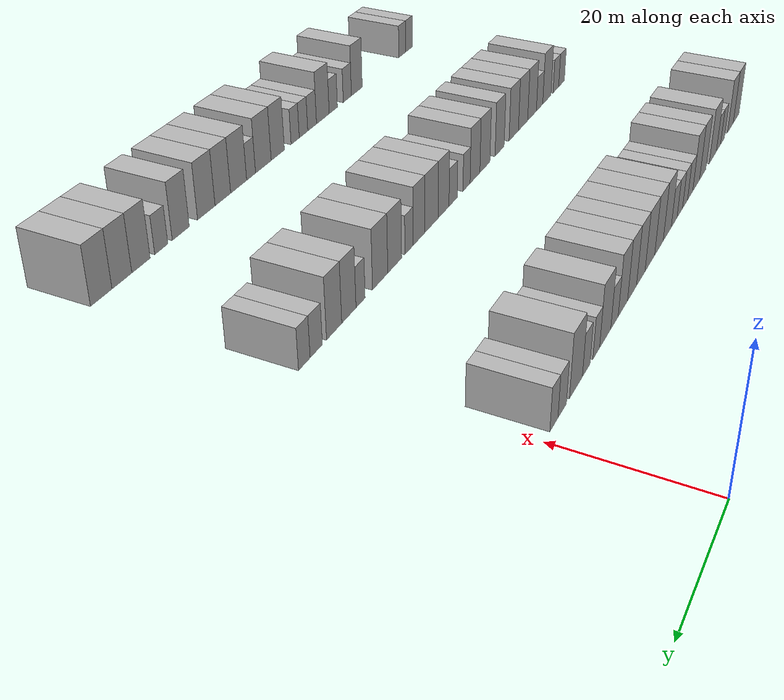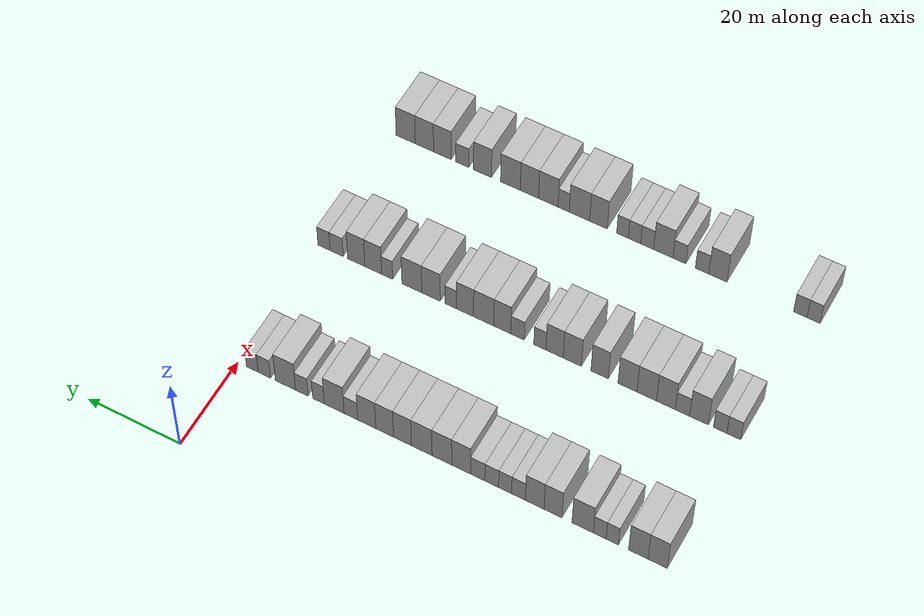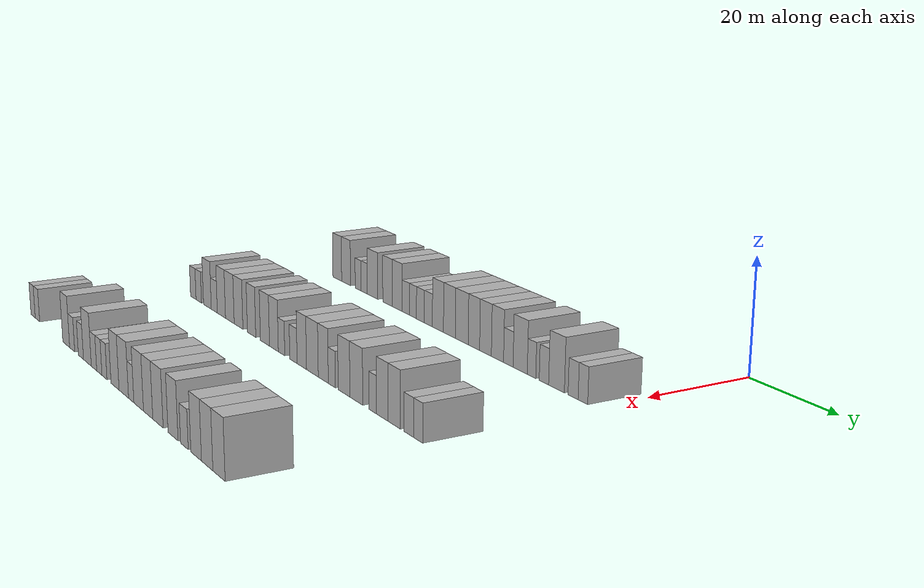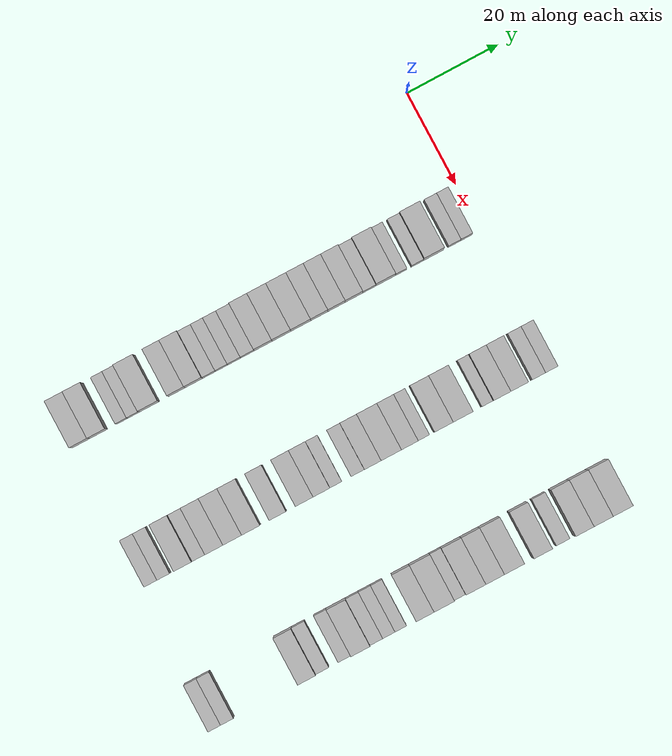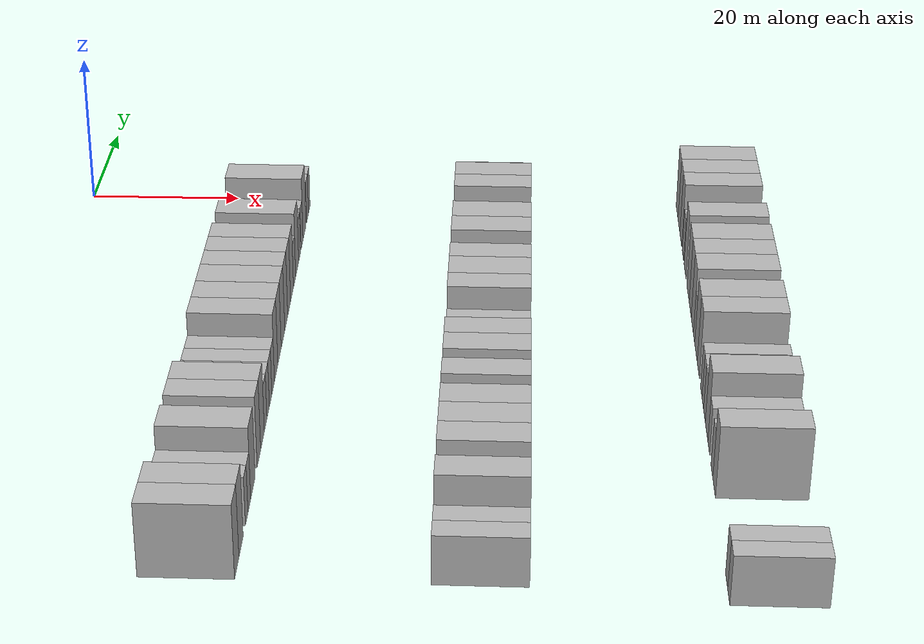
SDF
<sdf version="1.6">
 <world name="default">
  <model name="building_40">
   <static>1</static>
   <pose>25.0000 -86.8956 0 0.000000 0.000000 0.000000</pose>
   <link name="link">
    <pose>0 0 4.50 0 0 0</pose>
    <collision name="collision"><geometry><box><size>10.0000 3.8388 9.0000</size></box></geometry></collision>
    <visual name="visual">
     <cast_shadows>0</cast_shadows>
     <geometry><box><size>10.0000 3.8388 9.0000</size></box></geometry>
     <material>
      <script>
       <uri>model://HANNAS_wall/materials/scripts</uri>
       <uri>model://HANNAS_wall/materials/textures</uri>
       <name>vrc/HANNAS_wall</name>
      </script>
     </material>
    </visual>
   </link>
  </model>
  <model name="building_41">
   <static>1</static>
   <pose>25.0000 -83.0619 0 0.000000 0.000000 0.000000</pose>
   <link name="link">
    <pose>0 0 4.50 0 0 0</pose>
    <collision name="collision"><geometry><box><size>10.0000 3.8285 9.0000</size></box></geometry></collision>
    <visual name="visual">
     <cast_shadows>0</cast_shadows>
     <geometry><box><size>10.0000 3.8285 9.0000</size></box></geometry>
     <material>
      <script>
       <uri>model://HANNAS_wall/materials/scripts</uri>
       <uri>model://HANNAS_wall/materials/textures</uri>
       <name>vrc/HANNAS_wall</name>
      </script>
     </material>
    </visual>
   </link>
  </model>
  <model name="building_42">
   <static>1</static>
   <pose>25.0000 -77.9170 0 0.000000 0.000000 0.000000</pose>
   <link name="link">
    <pose>0 0 3.00 0 0 0</pose>
    <collision name="collision"><geometry><box><size>10.0000 2.4614 6.0000</size></box></geometry></collision>
    <visual name="visual">
     <cast_shadows>0</cast_shadows>
     <geometry><box><size>10.0000 2.4614 6.0000</size></box></geometry>
     <material>
      <script>
       <uri>model://HANNAS_wall/materials/scripts</uri>
       <uri>model://HANNAS_wall/materials/textures</uri>
       <name>vrc/HANNAS_wall</name>
      </script>
     </material>
    </visual>
   </link>
  </model>
  <model name="building_43">
   <static>1</static>
   <pose>25.0000 -75.4098 0 0.000000 0.000000 0.000000</pose>
   <link name="link">
    <pose>0 0 3.00 0 0 0</pose>
    <collision name="collision"><geometry><box><size>10.0000 2.5529 6.0000</size></box></geometry></collision>
    <visual name="visual">
     <cast_shadows>0</cast_shadows>
     <geometry><box><size>10.0000 2.5529 6.0000</size></box></geometry>
     <material>
      <script>
       <uri>model://HANNAS_wall/materials/scripts</uri>
       <uri>model://HANNAS_wall/materials/textures</uri>
       <name>vrc/HANNAS_wall</name>
      </script>
     </material>
    </visual>
   </link>
  </model>
  <model name="building_44">
   <static>1</static>
   <pose>25.0000 -71.9886 0 0.000000 0.000000 0.000000</pose>
   <link name="link">
    <pose>0 0 4.50 0 0 0</pose>
    <collision name="collision"><geometry><box><size>10.0000 4.2896 9.0000</size></box></geometry></collision>
    <visual name="visual">
     <cast_shadows>0</cast_shadows>
     <geometry><box><size>10.0000 4.2896 9.0000</size></box></geometry>
     <material>
      <script>
       <uri>model://HANNAS_wall/materials/scripts</uri>
       <uri>model://HANNAS_wall/materials/textures</uri>
       <name>vrc/HANNAS_wall</name>
      </script>
     </material>
    </visual>
   </link>
  </model>
  <model name="building_45">
   <static>1</static>
   <pose>25.0000 -66.0244 0 0.000000 0.000000 0.000000</pose>
   <link name="link">
    <pose>0 0 4.50 0 0 0</pose>
    <collision name="collision"><geometry><box><size>10.0000 3.6387 9.0000</size></box></geometry></collision>
    <visual name="visual">
     <cast_shadows>0</cast_shadows>
     <geometry><box><size>10.0000 3.6387 9.0000</size></box></geometry>
     <material>
      <script>
       <uri>model://HANNAS_wall/materials/scripts</uri>
       <uri>model://HANNAS_wall/materials/textures</uri>
       <name>vrc/HANNAS_wall</name>
      </script>
     </material>
    </visual>
   </link>
  </model>
  <model name="building_46">
   <static>1</static>
   <pose>25.0000 -62.3112 0 0.000000 0.000000 0.000000</pose>
   <link name="link">
    <pose>0 0 4.50 0 0 0</pose>
    <collision name="collision"><geometry><box><size>10.0000 3.7878 9.0000</size></box></geometry></collision>
    <visual name="visual">
     <cast_shadows>0</cast_shadows>
     <geometry><box><size>10.0000 3.7878 9.0000</size></box></geometry>
     <material>
      <script>
       <uri>model://HANNAS_wall/materials/scripts</uri>
       <uri>model://HANNAS_wall/materials/textures</uri>
       <name>vrc/HANNAS_wall</name>
      </script>
     </material>
    </visual>
   </link>
  </model>
  <model name="building_47">
   <static>1</static>
   <pose>25.0000 -59.0134 0 0.000000 0.000000 0.000000</pose>
   <link name="link">
    <pose>0 0 3.00 0 0 0</pose>
    <collision name="collision"><geometry><box><size>10.0000 2.8077 6.0000</size></box></geometry></collision>
    <visual name="visual">
     <cast_shadows>0</cast_shadows>
     <geometry><box><size>10.0000 2.8077 6.0000</size></box></geometry>
     <material>
      <script>
       <uri>model://HANNAS_wall/materials/scripts</uri>
       <uri>model://HANNAS_wall/materials/textures</uri>
       <name>vrc/HANNAS_wall</name>
      </script>
     </material>
    </visual>
   </link>
  </model>
  <model name="building_48">
   <static>1</static>
   <pose>25.0000 -56.2859 0 0.000000 0.000000 0.000000</pose>
   <link name="link">
    <pose>0 0 3.00 0 0 0</pose>
    <collision name="collision"><geometry><box><size>10.0000 2.6474 6.0000</size></box></geometry></collision>
    <visual name="visual">
     <cast_shadows>0</cast_shadows>
     <geometry><box><size>10.0000 2.6474 6.0000</size></box></geometry>
     <material>
      <script>
       <uri>model://HANNAS_wall/materials/scripts</uri>
       <uri>model://HANNAS_wall/materials/textures</uri>
       <name>vrc/HANNAS_wall</name>
      </script>
     </material>
    </visual>
   </link>
  </model>
  <model name="building_49">
   <static>1</static>
   <pose>25.0000 -53.5529 0 0.000000 0.000000 0.000000</pose>
   <link name="link">
    <pose>0 0 3.00 0 0 0</pose>
    <collision name="collision"><geometry><box><size>10.0000 2.8187 6.0000</size></box></geometry></collision>
    <visual name="visual">
     <cast_shadows>0</cast_shadows>
     <geometry><box><size>10.0000 2.8187 6.0000</size></box></geometry>
     <material>
      <script>
       <uri>model://HANNAS_wall/materials/scripts</uri>
       <uri>model://HANNAS_wall/materials/textures</uri>
       <name>vrc/HANNAS_wall</name>
      </script>
     </material>
    </visual>
   </link>
  </model>
  <model name="building_50">
   <static>1</static>
   <pose>25.0000 -50.6785 0 0.000000 0.000000 0.000000</pose>
   <link name="link">
    <pose>0 0 3.00 0 0 0</pose>
    <collision name="collision"><geometry><box><size>10.0000 2.9302 6.0000</size></box></geometry></collision>
    <visual name="visual">
     <cast_shadows>0</cast_shadows>
     <geometry><box><size>10.0000 2.9302 6.0000</size></box></geometry>
     <material>
      <script>
       <uri>model://HANNAS_wall/materials/scripts</uri>
       <uri>model://HANNAS_wall/materials/textures</uri>
       <name>vrc/HANNAS_wall</name>
      </script>
     </material>
    </visual>
   </link>
  </model>
  <model name="building_51">
   <static>1</static>
   <pose>25.0000 -47.2622 0 0.000000 0.000000 0.000000</pose>
   <link name="link">
    <pose>0 0 4.50 0 0 0</pose>
    <collision name="collision"><geometry><box><size>10.0000 3.9024 9.0000</size></box></geometry></collision>
    <visual name="visual">
     <cast_shadows>0</cast_shadows>
     <geometry><box><size>10.0000 3.9024 9.0000</size></box></geometry>
     <material>
      <script>
       <uri>model://HANNAS_wall/materials/scripts</uri>
       <uri>model://HANNAS_wall/materials/textures</uri>
       <name>vrc/HANNAS_wall</name>
      </script>
     </material>
    </visual>
   </link>
  </model>
  <model name="building_52">
   <static>1</static>
   <pose>25.0000 -43.2851 0 0.000000 0.000000 0.000000</pose>
   <link name="link">
    <pose>0 0 4.50 0 0 0</pose>
    <collision name="collision"><geometry><box><size>10.0000 4.0517 9.0000</size></box></geometry></collision>
    <visual name="visual">
     <cast_shadows>0</cast_shadows>
     <geometry><box><size>10.0000 4.0517 9.0000</size></box></geometry>
     <material>
      <script>
       <uri>model://HANNAS_wall/materials/scripts</uri>
       <uri>model://HANNAS_wall/materials/textures</uri>
       <name>vrc/HANNAS_wall</name>
      </script>
     </material>
    </visual>
   </link>
  </model>
  <model name="building_53">
   <static>1</static>
   <pose>25.0000 -39.0970 0 0.000000 0.000000 0.000000</pose>
   <link name="link">
    <pose>0 0 4.50 0 0 0</pose>
    <collision name="collision"><geometry><box><size>10.0000 4.3244 9.0000</size></box></geometry></collision>
    <visual name="visual">
     <cast_shadows>0</cast_shadows>
     <geometry><box><size>10.0000 4.3244 9.0000</size></box></geometry>
     <material>
      <script>
       <uri>model://HANNAS_wall/materials/scripts</uri>
       <uri>model://HANNAS_wall/materials/textures</uri>
       <name>vrc/HANNAS_wall</name>
      </script>
     </material>
    </visual>
   </link>
  </model>
  <model name="building_54">
   <static>1</static>
   <pose>25.0000 -35.0695 0 0.000000 0.000000 0.000000</pose>
   <link name="link">
    <pose>0 0 4.50 0 0 0</pose>
    <collision name="collision"><geometry><box><size>10.0000 3.7307 9.0000</size></box></geometry></collision>
    <visual name="visual">
     <cast_shadows>0</cast_shadows>
     <geometry><box><size>10.0000 3.7307 9.0000</size></box></geometry>
     <material>
      <script>
       <uri>model://HANNAS_wall/materials/scripts</uri>
       <uri>model://HANNAS_wall/materials/textures</uri>
       <name>vrc/HANNAS_wall</name>
      </script>
     </material>
    </visual>
   </link>
  </model>
  <model name="building_55">
   <static>1</static>
   <pose>25.0000 -31.3385 0 0.000000 0.000000 0.000000</pose>
   <link name="link">
    <pose>0 0 4.50 0 0 0</pose>
    <collision name="collision"><geometry><box><size>10.0000 3.7313 9.0000</size></box></geometry></collision>
    <visual name="visual">
     <cast_shadows>0</cast_shadows>
     <geometry><box><size>10.0000 3.7313 9.0000</size></box></geometry>
     <material>
      <script>
       <uri>model://HANNAS_wall/materials/scripts</uri>
       <uri>model://HANNAS_wall/materials/textures</uri>
       <name>vrc/HANNAS_wall</name>
      </script>
     </material>
    </visual>
   </link>
  </model>
  <model name="building_56">
   <static>1</static>
   <pose>25.0000 -27.5776 0 0.000000 0.000000 0.000000</pose>
   <link name="link">
    <pose>0 0 4.50 0 0 0</pose>
    <collision name="collision"><geometry><box><size>10.0000 3.7907 9.0000</size></box></geometry></collision>
    <visual name="visual">
     <cast_shadows>0</cast_shadows>
     <geometry><box><size>10.0000 3.7907 9.0000</size></box></geometry>
     <material>
      <script>
       <uri>model://HANNAS_wall/materials/scripts</uri>
       <uri>model://HANNAS_wall/materials/textures</uri>
       <name>vrc/HANNAS_wall</name>
      </script>
     </material>
    </visual>
   </link>
  </model>
  <model name="building_57">
   <static>1</static>
   <pose>25.0000 -24.2342 0 0.000000 0.000000 0.000000</pose>
   <link name="link">
    <pose>0 0 3.00 0 0 0</pose>
    <collision name="collision"><geometry><box><size>10.0000 2.8959 6.0000</size></box></geometry></collision>
    <visual name="visual">
     <cast_shadows>0</cast_shadows>
     <geometry><box><size>10.0000 2.8959 6.0000</size></box></geometry>
     <material>
      <script>
       <uri>model://HANNAS_wall/materials/scripts</uri>
       <uri>model://HANNAS_wall/materials/textures</uri>
       <name>vrc/HANNAS_wall</name>
      </script>
     </material>
    </visual>
   </link>
  </model>
  <model name="building_58">
   <static>1</static>
   <pose>25.0000 -20.6835 0 0.000000 0.000000 0.000000</pose>
   <link name="link">
    <pose>0 0 4.50 0 0 0</pose>
    <collision name="collision"><geometry><box><size>10.0000 4.2056 9.0000</size></box></geometry></collision>
    <visual name="visual">
     <cast_shadows>0</cast_shadows>
     <geometry><box><size>10.0000 4.2056 9.0000</size></box></geometry>
     <material>
      <script>
       <uri>model://HANNAS_wall/materials/scripts</uri>
       <uri>model://HANNAS_wall/materials/textures</uri>
       <name>vrc/HANNAS_wall</name>
      </script>
     </material>
    </visual>
   </link>
  </model>
  <model name="building_59">
   <static>1</static>
   <pose>25.0000 -17.3488 0 0.000000 0.000000 0.000000</pose>
   <link name="link">
    <pose>0 0 3.00 0 0 0</pose>
    <collision name="collision"><geometry><box><size>10.0000 2.4637 6.0000</size></box></geometry></collision>
    <visual name="visual">
     <cast_shadows>0</cast_shadows>
     <geometry><box><size>10.0000 2.4637 6.0000</size></box></geometry>
     <material>
      <script>
       <uri>model://HANNAS_wall/materials/scripts</uri>
       <uri>model://HANNAS_wall/materials/textures</uri>
       <name>vrc/HANNAS_wall</name>
      </script>
     </material>
    </visual>
   </link>
  </model>
  <model name="building_60">
   <static>1</static>
   <pose>25.0000 -13.7877 0 0.000000 0.000000 0.000000</pose>
   <link name="link">
    <pose>0 0 3.00 0 0 0</pose>
    <collision name="collision"><geometry><box><size>10.0000 2.6586 6.0000</size></box></geometry></collision>
    <visual name="visual">
     <cast_shadows>0</cast_shadows>
     <geometry><box><size>10.0000 2.6586 6.0000</size></box></geometry>
     <material>
      <script>
       <uri>model://HANNAS_wall/materials/scripts</uri>
       <uri>model://HANNAS_wall/materials/textures</uri>
       <name>vrc/HANNAS_wall</name>
      </script>
     </material>
    </visual>
   </link>
  </model>
  <model name="building_61">
   <static>1</static>
   <pose>25.0000 -10.2768 0 0.000000 0.000000 0.000000</pose>
   <link name="link">
    <pose>0 0 4.50 0 0 0</pose>
    <collision name="collision"><geometry><box><size>10.0000 4.3634 9.0000</size></box></geometry></collision>
    <visual name="visual">
     <cast_shadows>0</cast_shadows>
     <geometry><box><size>10.0000 4.3634 9.0000</size></box></geometry>
     <material>
      <script>
       <uri>model://HANNAS_wall/materials/scripts</uri>
       <uri>model://HANNAS_wall/materials/textures</uri>
       <name>vrc/HANNAS_wall</name>
      </script>
     </material>
    </visual>
   </link>
  </model>
  <model name="building_62">
   <static>1</static>
   <pose>25.0000 -5.7446 0 0.000000 0.000000 0.000000</pose>
   <link name="link">
    <pose>0 0 3.00 0 0 0</pose>
    <collision name="collision"><geometry><box><size>10.0000 2.7009 6.0000</size></box></geometry></collision>
    <visual name="visual">
     <cast_shadows>0</cast_shadows>
     <geometry><box><size>10.0000 2.7009 6.0000</size></box></geometry>
     <material>
      <script>
       <uri>model://HANNAS_wall/materials/scripts</uri>
       <uri>model://HANNAS_wall/materials/textures</uri>
       <name>vrc/HANNAS_wall</name>
      </script>
     </material>
    </visual>
   </link>
  </model>
  <model name="building_63">
   <static>1</static>
   <pose>25.0000 -3.1320 0 0.000000 0.000000 0.000000</pose>
   <link name="link">
    <pose>0 0 3.00 0 0 0</pose>
    <collision name="collision"><geometry><box><size>10.0000 2.5242 6.0000</size></box></geometry></collision>
    <visual name="visual">
     <cast_shadows>0</cast_shadows>
     <geometry><box><size>10.0000 2.5242 6.0000</size></box></geometry>
     <material>
      <script>
       <uri>model://HANNAS_wall/materials/scripts</uri>
       <uri>model://HANNAS_wall/materials/textures</uri>
       <name>vrc/HANNAS_wall</name>
      </script>
     </material>
    </visual>
   </link>
  </model>
  <model name="building_185">
   <static>1</static>
   <pose>55.0000 -87.4559 0 0.000000 0.000000 0.000000</pose>
   <link name="link">
    <pose>0 0 3.00 0 0 0</pose>
    <collision name="collision"><geometry><box><size>10.0000 2.8057 6.0000</size></box></geometry></collision>
    <visual name="visual">
     <cast_shadows>0</cast_shadows>
     <geometry><box><size>10.0000 2.8057 6.0000</size></box></geometry>
     <material>
      <script>
       <uri>model://HANNAS_wall/materials/scripts</uri>
       <uri>model://HANNAS_wall/materials/textures</uri>
       <name>vrc/HANNAS_wall</name>
      </script>
     </material>
    </visual>
   </link>
  </model>
  <model name="building_186">
   <static>1</static>
   <pose>55.0000 -84.6841 0 0.000000 0.000000 0.000000</pose>
   <link name="link">
    <pose>0 0 3.00 0 0 0</pose>
    <collision name="collision"><geometry><box><size>10.0000 2.7378 6.0000</size></box></geometry></collision>
    <visual name="visual">
     <cast_shadows>0</cast_shadows>
     <geometry><box><size>10.0000 2.7378 6.0000</size></box></geometry>
     <material>
      <script>
       <uri>model://HANNAS_wall/materials/scripts</uri>
       <uri>model://HANNAS_wall/materials/textures</uri>
       <name>vrc/HANNAS_wall</name>
      </script>
     </material>
    </visual>
   </link>
  </model>
  <model name="building_187">
   <static>1</static>
   <pose>55.0000 -80.4016 0 0.000000 0.000000 0.000000</pose>
   <link name="link">
    <pose>0 0 4.50 0 0 0</pose>
    <collision name="collision"><geometry><box><size>10.0000 3.8273 9.0000</size></box></geometry></collision>
    <visual name="visual">
     <cast_shadows>0</cast_shadows>
     <geometry><box><size>10.0000 3.8273 9.0000</size></box></geometry>
     <material>
      <script>
       <uri>model://HANNAS_wall/materials/scripts</uri>
       <uri>model://HANNAS_wall/materials/textures</uri>
       <name>vrc/HANNAS_wall</name>
      </script>
     </material>
    </visual>
   </link>
  </model>
  <model name="building_188">
   <static>1</static>
   <pose>55.0000 -77.0390 0 0.000000 0.000000 0.000000</pose>
   <link name="link">
    <pose>0 0 3.00 0 0 0</pose>
    <collision name="collision"><geometry><box><size>10.0000 2.8979 6.0000</size></box></geometry></collision>
    <visual name="visual">
     <cast_shadows>0</cast_shadows>
     <geometry><box><size>10.0000 2.8979 6.0000</size></box></geometry>
     <material>
      <script>
       <uri>model://HANNAS_wall/materials/scripts</uri>
       <uri>model://HANNAS_wall/materials/textures</uri>
       <name>vrc/HANNAS_wall</name>
      </script>
     </material>
    </visual>
   </link>
  </model>
  <model name="building_189">
   <static>1</static>
   <pose>55.0000 -73.6540 0 0.000000 0.000000 0.000000</pose>
   <link name="link">
    <pose>0 0 4.50 0 0 0</pose>
    <collision name="collision"><geometry><box><size>10.0000 3.8720 9.0000</size></box></geometry></collision>
    <visual name="visual">
     <cast_shadows>0</cast_shadows>
     <geometry><box><size>10.0000 3.8720 9.0000</size></box></geometry>
     <material>
      <script>
       <uri>model://HANNAS_wall/materials/scripts</uri>
       <uri>model://HANNAS_wall/materials/textures</uri>
       <name>vrc/HANNAS_wall</name>
      </script>
     </material>
    </visual>
   </link>
  </model>
  <model name="building_190">
   <static>1</static>
   <pose>55.0000 -69.7147 0 0.000000 0.000000 0.000000</pose>
   <link name="link">
    <pose>0 0 4.50 0 0 0</pose>
    <collision name="collision"><geometry><box><size>10.0000 4.0067 9.0000</size></box></geometry></collision>
    <visual name="visual">
     <cast_shadows>0</cast_shadows>
     <geometry><box><size>10.0000 4.0067 9.0000</size></box></geometry>
     <material>
      <script>
       <uri>model://HANNAS_wall/materials/scripts</uri>
       <uri>model://HANNAS_wall/materials/textures</uri>
       <name>vrc/HANNAS_wall</name>
      </script>
     </material>
    </visual>
   </link>
  </model>
  <model name="building_191">
   <static>1</static>
   <pose>55.0000 -65.7523 0 0.000000 0.000000 0.000000</pose>
   <link name="link">
    <pose>0 0 4.50 0 0 0</pose>
    <collision name="collision"><geometry><box><size>10.0000 3.9180 9.0000</size></box></geometry></collision>
    <visual name="visual">
     <cast_shadows>0</cast_shadows>
     <geometry><box><size>10.0000 3.9180 9.0000</size></box></geometry>
     <material>
      <script>
       <uri>model://HANNAS_wall/materials/scripts</uri>
       <uri>model://HANNAS_wall/materials/textures</uri>
       <name>vrc/HANNAS_wall</name>
      </script>
     </material>
    </visual>
   </link>
  </model>
  <model name="building_192">
   <static>1</static>
   <pose>55.0000 -59.9855 0 0.000000 0.000000 0.000000</pose>
   <link name="link">
    <pose>0 0 4.50 0 0 0</pose>
    <collision name="collision"><geometry><box><size>10.0000 3.6156 9.0000</size></box></geometry></collision>
    <visual name="visual">
     <cast_shadows>0</cast_shadows>
     <geometry><box><size>10.0000 3.6156 9.0000</size></box></geometry>
     <material>
      <script>
       <uri>model://HANNAS_wall/materials/scripts</uri>
       <uri>model://HANNAS_wall/materials/textures</uri>
       <name>vrc/HANNAS_wall</name>
      </script>
     </material>
    </visual>
   </link>
  </model>
  <model name="building_193">
   <static>1</static>
   <pose>55.0000 -54.2733 0 0.000000 0.000000 0.000000</pose>
   <link name="link">
    <pose>0 0 4.50 0 0 0</pose>
    <collision name="collision"><geometry><box><size>10.0000 3.8086 9.0000</size></box></geometry></collision>
    <visual name="visual">
     <cast_shadows>0</cast_shadows>
     <geometry><box><size>10.0000 3.8086 9.0000</size></box></geometry>
     <material>
      <script>
       <uri>model://HANNAS_wall/materials/scripts</uri>
       <uri>model://HANNAS_wall/materials/textures</uri>
       <name>vrc/HANNAS_wall</name>
      </script>
     </material>
    </visual>
   </link>
  </model>
  <model name="building_194">
   <static>1</static>
   <pose>55.0000 -50.5607 0 0.000000 0.000000 0.000000</pose>
   <link name="link">
    <pose>0 0 4.50 0 0 0</pose>
    <collision name="collision"><geometry><box><size>10.0000 3.6167 9.0000</size></box></geometry></collision>
    <visual name="visual">
     <cast_shadows>0</cast_shadows>
     <geometry><box><size>10.0000 3.6167 9.0000</size></box></geometry>
     <material>
      <script>
       <uri>model://HANNAS_wall/materials/scripts</uri>
       <uri>model://HANNAS_wall/materials/textures</uri>
       <name>vrc/HANNAS_wall</name>
      </script>
     </material>
    </visual>
   </link>
  </model>
  <model name="building_195">
   <static>1</static>
   <pose>55.0000 -47.4698 0 0.000000 0.000000 0.000000</pose>
   <link name="link">
    <pose>0 0 3.00 0 0 0</pose>
    <collision name="collision"><geometry><box><size>10.0000 2.5650 6.0000</size></box></geometry></collision>
    <visual name="visual">
     <cast_shadows>0</cast_shadows>
     <geometry><box><size>10.0000 2.5650 6.0000</size></box></geometry>
     <material>
      <script>
       <uri>model://HANNAS_wall/materials/scripts</uri>
       <uri>model://HANNAS_wall/materials/textures</uri>
       <name>vrc/HANNAS_wall</name>
      </script>
     </material>
    </visual>
   </link>
  </model>
  <model name="building_196">
   <static>1</static>
   <pose>55.0000 -42.7627 0 0.000000 0.000000 0.000000</pose>
   <link name="link">
    <pose>0 0 3.00 0 0 0</pose>
    <collision name="collision"><geometry><box><size>10.0000 2.8492 6.0000</size></box></geometry></collision>
    <visual name="visual">
     <cast_shadows>0</cast_shadows>
     <geometry><box><size>10.0000 2.8492 6.0000</size></box></geometry>
     <material>
      <script>
       <uri>model://HANNAS_wall/materials/scripts</uri>
       <uri>model://HANNAS_wall/materials/textures</uri>
       <name>vrc/HANNAS_wall</name>
      </script>
     </material>
    </visual>
   </link>
  </model>
  <model name="building_197">
   <static>1</static>
   <pose>55.0000 -39.5380 0 0.000000 0.000000 0.000000</pose>
   <link name="link">
    <pose>0 0 4.50 0 0 0</pose>
    <collision name="collision"><geometry><box><size>10.0000 3.6003 9.0000</size></box></geometry></collision>
    <visual name="visual">
     <cast_shadows>0</cast_shadows>
     <geometry><box><size>10.0000 3.6003 9.0000</size></box></geometry>
     <material>
      <script>
       <uri>model://HANNAS_wall/materials/scripts</uri>
       <uri>model://HANNAS_wall/materials/textures</uri>
       <name>vrc/HANNAS_wall</name>
      </script>
     </material>
    </visual>
   </link>
  </model>
  <model name="building_198">
   <static>1</static>
   <pose>55.0000 -35.5550 0 0.000000 0.000000 0.000000</pose>
   <link name="link">
    <pose>0 0 4.50 0 0 0</pose>
    <collision name="collision"><geometry><box><size>10.0000 4.3657 9.0000</size></box></geometry></collision>
    <visual name="visual">
     <cast_shadows>0</cast_shadows>
     <geometry><box><size>10.0000 4.3657 9.0000</size></box></geometry>
     <material>
      <script>
       <uri>model://HANNAS_wall/materials/scripts</uri>
       <uri>model://HANNAS_wall/materials/textures</uri>
       <name>vrc/HANNAS_wall</name>
      </script>
     </material>
    </visual>
   </link>
  </model>
  <model name="building_199">
   <static>1</static>
   <pose>55.0000 -31.5668 0 0.000000 0.000000 0.000000</pose>
   <link name="link">
    <pose>0 0 4.50 0 0 0</pose>
    <collision name="collision"><geometry><box><size>10.0000 3.6107 9.0000</size></box></geometry></collision>
    <visual name="visual">
     <cast_shadows>0</cast_shadows>
     <geometry><box><size>10.0000 3.6107 9.0000</size></box></geometry>
     <material>
      <script>
       <uri>model://HANNAS_wall/materials/scripts</uri>
       <uri>model://HANNAS_wall/materials/textures</uri>
       <name>vrc/HANNAS_wall</name>
      </script>
     </material>
    </visual>
   </link>
  </model>
  <model name="building_200">
   <static>1</static>
   <pose>55.0000 -28.5102 0 0.000000 0.000000 0.000000</pose>
   <link name="link">
    <pose>0 0 3.00 0 0 0</pose>
    <collision name="collision"><geometry><box><size>10.0000 2.5026 6.0000</size></box></geometry></collision>
    <visual name="visual">
     <cast_shadows>0</cast_shadows>
     <geometry><box><size>10.0000 2.5026 6.0000</size></box></geometry>
     <material>
      <script>
       <uri>model://HANNAS_wall/materials/scripts</uri>
       <uri>model://HANNAS_wall/materials/textures</uri>
       <name>vrc/HANNAS_wall</name>
      </script>
     </material>
    </visual>
   </link>
  </model>
  <model name="building_201">
   <static>1</static>
   <pose>55.0000 -24.2482 0 0.000000 0.000000 0.000000</pose>
   <link name="link">
    <pose>0 0 4.50 0 0 0</pose>
    <collision name="collision"><geometry><box><size>10.0000 4.0212 9.0000</size></box></geometry></collision>
    <visual name="visual">
     <cast_shadows>0</cast_shadows>
     <geometry><box><size>10.0000 4.0212 9.0000</size></box></geometry>
     <material>
      <script>
       <uri>model://HANNAS_wall/materials/scripts</uri>
       <uri>model://HANNAS_wall/materials/textures</uri>
       <name>vrc/HANNAS_wall</name>
      </script>
     </material>
    </visual>
   </link>
  </model>
  <model name="building_202">
   <static>1</static>
   <pose>55.0000 -20.0961 0 0.000000 0.000000 0.000000</pose>
   <link name="link">
    <pose>0 0 4.50 0 0 0</pose>
    <collision name="collision"><geometry><box><size>10.0000 4.2831 9.0000</size></box></geometry></collision>
    <visual name="visual">
     <cast_shadows>0</cast_shadows>
     <geometry><box><size>10.0000 4.2831 9.0000</size></box></geometry>
     <material>
      <script>
       <uri>model://HANNAS_wall/materials/scripts</uri>
       <uri>model://HANNAS_wall/materials/textures</uri>
       <name>vrc/HANNAS_wall</name>
      </script>
     </material>
    </visual>
   </link>
  </model>
  <model name="building_203">
   <static>1</static>
   <pose>55.0000 -14.7460 0 0.000000 0.000000 0.000000</pose>
   <link name="link">
    <pose>0 0 3.00 0 0 0</pose>
    <collision name="collision"><geometry><box><size>10.0000 2.4171 6.0000</size></box></geometry></collision>
    <visual name="visual">
     <cast_shadows>0</cast_shadows>
     <geometry><box><size>10.0000 2.4171 6.0000</size></box></geometry>
     <material>
      <script>
       <uri>model://HANNAS_wall/materials/scripts</uri>
       <uri>model://HANNAS_wall/materials/textures</uri>
       <name>vrc/HANNAS_wall</name>
      </script>
     </material>
    </visual>
   </link>
  </model>
  <model name="building_204">
   <static>1</static>
   <pose>55.0000 -11.7007 0 0.000000 0.000000 0.000000</pose>
   <link name="link">
    <pose>0 0 4.50 0 0 0</pose>
    <collision name="collision"><geometry><box><size>10.0000 3.6735 9.0000</size></box></geometry></collision>
    <visual name="visual">
     <cast_shadows>0</cast_shadows>
     <geometry><box><size>10.0000 3.6735 9.0000</size></box></geometry>
     <material>
      <script>
       <uri>model://HANNAS_wall/materials/scripts</uri>
       <uri>model://HANNAS_wall/materials/textures</uri>
       <name>vrc/HANNAS_wall</name>
      </script>
     </material>
    </visual>
   </link>
  </model>
  <model name="building_205">
   <static>1</static>
   <pose>55.0000 -7.9735 0 0.000000 0.000000 0.000000</pose>
   <link name="link">
    <pose>0 0 4.50 0 0 0</pose>
    <collision name="collision"><geometry><box><size>10.0000 3.7809 9.0000</size></box></geometry></collision>
    <visual name="visual">
     <cast_shadows>0</cast_shadows>
     <geometry><box><size>10.0000 3.7809 9.0000</size></box></geometry>
     <material>
      <script>
       <uri>model://HANNAS_wall/materials/scripts</uri>
       <uri>model://HANNAS_wall/materials/textures</uri>
       <name>vrc/HANNAS_wall</name>
      </script>
     </material>
    </visual>
   </link>
  </model>
  <model name="building_206">
   <static>1</static>
   <pose>55.0000 -3.6330 0 0.000000 0.000000 0.000000</pose>
   <link name="link">
    <pose>0 0 3.00 0 0 0</pose>
    <collision name="collision"><geometry><box><size>10.0000 2.9001 6.0000</size></box></geometry></collision>
    <visual name="visual">
     <cast_shadows>0</cast_shadows>
     <geometry><box><size>10.0000 2.9001 6.0000</size></box></geometry>
     <material>
      <script>
       <uri>model://HANNAS_wall/materials/scripts</uri>
       <uri>model://HANNAS_wall/materials/textures</uri>
       <name>vrc/HANNAS_wall</name>
      </script>
     </material>
    </visual>
   </link>
  </model>
  <model name="building_207">
   <static>1</static>
   <pose>55.0000 -0.8436 0 0.000000 0.000000 0.000000</pose>
   <link name="link">
    <pose>0 0 3.00 0 0 0</pose>
    <collision name="collision"><geometry><box><size>10.0000 2.6787 6.0000</size></box></geometry></collision>
    <visual name="visual">
     <cast_shadows>0</cast_shadows>
     <geometry><box><size>10.0000 2.6787 6.0000</size></box></geometry>
     <material>
      <script>
       <uri>model://HANNAS_wall/materials/scripts</uri>
       <uri>model://HANNAS_wall/materials/textures</uri>
       <name>vrc/HANNAS_wall</name>
      </script>
     </material>
    </visual>
   </link>
  </model>
  <model name="building_315">
   <static>1</static>
   <pose>85.0000 -89.6705 0 0.000000 0.000000 0.000000</pose>
   <link name="link">
    <pose>0 0 3.00 0 0 0</pose>
    <collision name="collision"><geometry><box><size>10.0000 2.7214 6.0000</size></box></geometry></collision>
    <visual name="visual">
     <cast_shadows>0</cast_shadows>
     <geometry><box><size>10.0000 2.7214 6.0000</size></box></geometry>
     <material>
      <script>
       <uri>model://HANNAS_wall/materials/scripts</uri>
       <uri>model://HANNAS_wall/materials/textures</uri>
       <name>vrc/HANNAS_wall</name>
      </script>
     </material>
    </visual>
   </link>
  </model>
  <model name="building_316">
   <static>1</static>
   <pose>85.0000 -86.9247 0 0.000000 0.000000 0.000000</pose>
   <link name="link">
    <pose>0 0 3.00 0 0 0</pose>
    <collision name="collision"><geometry><box><size>10.0000 2.7703 6.0000</size></box></geometry></collision>
    <visual name="visual">
     <cast_shadows>0</cast_shadows>
     <geometry><box><size>10.0000 2.7703 6.0000</size></box></geometry>
     <material>
      <script>
       <uri>model://HANNAS_wall/materials/scripts</uri>
       <uri>model://HANNAS_wall/materials/textures</uri>
       <name>vrc/HANNAS_wall</name>
      </script>
     </material>
    </visual>
   </link>
  </model>
  <model name="building_317">
   <static>1</static>
   <pose>85.0000 -69.7592 0 0.000000 0.000000 0.000000</pose>
   <link name="link">
    <pose>0 0 4.50 0 0 0</pose>
    <collision name="collision"><geometry><box><size>10.0000 3.8536 9.0000</size></box></geometry></collision>
    <visual name="visual">
     <cast_shadows>0</cast_shadows>
     <geometry><box><size>10.0000 3.8536 9.0000</size></box></geometry>
     <material>
      <script>
       <uri>model://HANNAS_wall/materials/scripts</uri>
       <uri>model://HANNAS_wall/materials/textures</uri>
       <name>vrc/HANNAS_wall</name>
      </script>
     </material>
    </visual>
   </link>
  </model>
  <model name="building_318">
   <static>1</static>
   <pose>85.0000 -66.4227 0 0.000000 0.000000 0.000000</pose>
   <link name="link">
    <pose>0 0 3.00 0 0 0</pose>
    <collision name="collision"><geometry><box><size>10.0000 2.8194 6.0000</size></box></geometry></collision>
    <visual name="visual">
     <cast_shadows>0</cast_shadows>
     <geometry><box><size>10.0000 2.8194 6.0000</size></box></geometry>
     <material>
      <script>
       <uri>model://HANNAS_wall/materials/scripts</uri>
       <uri>model://HANNAS_wall/materials/textures</uri>
       <name>vrc/HANNAS_wall</name>
      </script>
     </material>
    </visual>
   </link>
  </model>
  <model name="building_319">
   <static>1</static>
   <pose>85.0000 -61.6410 0 0.000000 0.000000 0.000000</pose>
   <link name="link">
    <pose>0 0 3.00 0 0 0</pose>
    <collision name="collision"><geometry><box><size>10.0000 2.7441 6.0000</size></box></geometry></collision>
    <visual name="visual">
     <cast_shadows>0</cast_shadows>
     <geometry><box><size>10.0000 2.7441 6.0000</size></box></geometry>
     <material>
      <script>
       <uri>model://HANNAS_wall/materials/scripts</uri>
       <uri>model://HANNAS_wall/materials/textures</uri>
       <name>vrc/HANNAS_wall</name>
      </script>
     </material>
    </visual>
   </link>
  </model>
  <model name="building_320">
   <static>1</static>
   <pose>85.0000 -58.2048 0 0.000000 0.000000 0.000000</pose>
   <link name="link">
    <pose>0 0 4.50 0 0 0</pose>
    <collision name="collision"><geometry><box><size>10.0000 4.1284 9.0000</size></box></geometry></collision>
    <visual name="visual">
     <cast_shadows>0</cast_shadows>
     <geometry><box><size>10.0000 4.1284 9.0000</size></box></geometry>
     <material>
      <script>
       <uri>model://HANNAS_wall/materials/scripts</uri>
       <uri>model://HANNAS_wall/materials/textures</uri>
       <name>vrc/HANNAS_wall</name>
      </script>
     </material>
    </visual>
   </link>
  </model>
  <model name="building_321">
   <static>1</static>
   <pose>85.0000 -54.7530 0 0.000000 0.000000 0.000000</pose>
   <link name="link">
    <pose>0 0 3.00 0 0 0</pose>
    <collision name="collision"><geometry><box><size>10.0000 2.7752 6.0000</size></box></geometry></collision>
    <visual name="visual">
     <cast_shadows>0</cast_shadows>
     <geometry><box><size>10.0000 2.7752 6.0000</size></box></geometry>
     <material>
      <script>
       <uri>model://HANNAS_wall/materials/scripts</uri>
       <uri>model://HANNAS_wall/materials/textures</uri>
       <name>vrc/HANNAS_wall</name>
      </script>
     </material>
    </visual>
   </link>
  </model>
  <model name="building_322">
   <static>1</static>
   <pose>85.0000 -52.0486 0 0.000000 0.000000 0.000000</pose>
   <link name="link">
    <pose>0 0 3.00 0 0 0</pose>
    <collision name="collision"><geometry><box><size>10.0000 2.6335 6.0000</size></box></geometry></collision>
    <visual name="visual">
     <cast_shadows>0</cast_shadows>
     <geometry><box><size>10.0000 2.6335 6.0000</size></box></geometry>
     <material>
      <script>
       <uri>model://HANNAS_wall/materials/scripts</uri>
       <uri>model://HANNAS_wall/materials/textures</uri>
       <name>vrc/HANNAS_wall</name>
      </script>
     </material>
    </visual>
   </link>
  </model>
  <model name="building_323">
   <static>1</static>
   <pose>85.0000 -49.4848 0 0.000000 0.000000 0.000000</pose>
   <link name="link">
    <pose>0 0 3.00 0 0 0</pose>
    <collision name="collision"><geometry><box><size>10.0000 2.4942 6.0000</size></box></geometry></collision>
    <visual name="visual">
     <cast_shadows>0</cast_shadows>
     <geometry><box><size>10.0000 2.4942 6.0000</size></box></geometry>
     <material>
      <script>
       <uri>model://HANNAS_wall/materials/scripts</uri>
       <uri>model://HANNAS_wall/materials/textures</uri>
       <name>vrc/HANNAS_wall</name>
      </script>
     </material>
    </visual>
   </link>
  </model>
  <model name="building_324">
   <static>1</static>
   <pose>85.0000 -44.3191 0 0.000000 0.000000 0.000000</pose>
   <link name="link">
    <pose>0 0 4.50 0 0 0</pose>
    <collision name="collision"><geometry><box><size>10.0000 3.8371 9.0000</size></box></geometry></collision>
    <visual name="visual">
     <cast_shadows>0</cast_shadows>
     <geometry><box><size>10.0000 3.8371 9.0000</size></box></geometry>
     <material>
      <script>
       <uri>model://HANNAS_wall/materials/scripts</uri>
       <uri>model://HANNAS_wall/materials/textures</uri>
       <name>vrc/HANNAS_wall</name>
      </script>
     </material>
    </visual>
   </link>
  </model>
  <model name="building_325">
   <static>1</static>
   <pose>85.0000 -40.1906 0 0.000000 0.000000 0.000000</pose>
   <link name="link">
    <pose>0 0 4.50 0 0 0</pose>
    <collision name="collision"><geometry><box><size>10.0000 4.4200 9.0000</size></box></geometry></collision>
    <visual name="visual">
     <cast_shadows>0</cast_shadows>
     <geometry><box><size>10.0000 4.4200 9.0000</size></box></geometry>
     <material>
      <script>
       <uri>model://HANNAS_wall/materials/scripts</uri>
       <uri>model://HANNAS_wall/materials/textures</uri>
       <name>vrc/HANNAS_wall</name>
      </script>
     </material>
    </visual>
   </link>
  </model>
  <model name="building_326">
   <static>1</static>
   <pose>85.0000 -36.7631 0 0.000000 0.000000 0.000000</pose>
   <link name="link">
    <pose>0 0 3.00 0 0 0</pose>
    <collision name="collision"><geometry><box><size>10.0000 2.4350 6.0000</size></box></geometry></collision>
    <visual name="visual">
     <cast_shadows>0</cast_shadows>
     <geometry><box><size>10.0000 2.4350 6.0000</size></box></geometry>
     <material>
      <script>
       <uri>model://HANNAS_wall/materials/scripts</uri>
       <uri>model://HANNAS_wall/materials/textures</uri>
       <name>vrc/HANNAS_wall</name>
      </script>
     </material>
    </visual>
   </link>
  </model>
  <model name="building_327">
   <static>1</static>
   <pose>85.0000 -33.4138 0 0.000000 0.000000 0.000000</pose>
   <link name="link">
    <pose>0 0 4.50 0 0 0</pose>
    <collision name="collision"><geometry><box><size>10.0000 4.2635 9.0000</size></box></geometry></collision>
    <visual name="visual">
     <cast_shadows>0</cast_shadows>
     <geometry><box><size>10.0000 4.2635 9.0000</size></box></geometry>
     <material>
      <script>
       <uri>model://HANNAS_wall/materials/scripts</uri>
       <uri>model://HANNAS_wall/materials/textures</uri>
       <name>vrc/HANNAS_wall</name>
      </script>
     </material>
    </visual>
   </link>
  </model>
  <model name="building_328">
   <static>1</static>
   <pose>85.0000 -29.2820 0 0.000000 0.000000 0.000000</pose>
   <link name="link">
    <pose>0 0 4.50 0 0 0</pose>
    <collision name="collision"><geometry><box><size>10.0000 4.0000 9.0000</size></box></geometry></collision>
    <visual name="visual">
     <cast_shadows>0</cast_shadows>
     <geometry><box><size>10.0000 4.0000 9.0000</size></box></geometry>
     <material>
      <script>
       <uri>model://HANNAS_wall/materials/scripts</uri>
       <uri>model://HANNAS_wall/materials/textures</uri>
       <name>vrc/HANNAS_wall</name>
      </script>
     </material>
    </visual>
   </link>
  </model>
  <model name="building_329">
   <static>1</static>
   <pose>85.0000 -25.1136 0 0.000000 0.000000 0.000000</pose>
   <link name="link">
    <pose>0 0 4.50 0 0 0</pose>
    <collision name="collision"><geometry><box><size>10.0000 4.3369 9.0000</size></box></geometry></collision>
    <visual name="visual">
     <cast_shadows>0</cast_shadows>
     <geometry><box><size>10.0000 4.3369 9.0000</size></box></geometry>
     <material>
      <script>
       <uri>model://HANNAS_wall/materials/scripts</uri>
       <uri>model://HANNAS_wall/materials/textures</uri>
       <name>vrc/HANNAS_wall</name>
      </script>
     </material>
    </visual>
   </link>
  </model>
  <model name="building_330">
   <static>1</static>
   <pose>85.0000 -18.9440 0 0.000000 0.000000 0.000000</pose>
   <link name="link">
    <pose>0 0 4.50 0 0 0</pose>
    <collision name="collision"><geometry><box><size>10.0000 4.0023 9.0000</size></box></geometry></collision>
    <visual name="visual">
     <cast_shadows>0</cast_shadows>
     <geometry><box><size>10.0000 4.0023 9.0000</size></box></geometry>
     <material>
      <script>
       <uri>model://HANNAS_wall/materials/scripts</uri>
       <uri>model://HANNAS_wall/materials/textures</uri>
       <name>vrc/HANNAS_wall</name>
      </script>
     </material>
    </visual>
   </link>
  </model>
  <model name="building_331">
   <static>1</static>
   <pose>85.0000 -14.4655 0 0.000000 0.000000 0.000000</pose>
   <link name="link">
    <pose>0 0 3.00 0 0 0</pose>
    <collision name="collision"><geometry><box><size>10.0000 2.9547 6.0000</size></box></geometry></collision>
    <visual name="visual">
     <cast_shadows>0</cast_shadows>
     <geometry><box><size>10.0000 2.9547 6.0000</size></box></geometry>
     <material>
      <script>
       <uri>model://HANNAS_wall/materials/scripts</uri>
       <uri>model://HANNAS_wall/materials/textures</uri>
       <name>vrc/HANNAS_wall</name>
      </script>
     </material>
    </visual>
   </link>
  </model>
  <model name="building_332">
   <static>1</static>
   <pose>85.0000 -10.0104 0 0.000000 0.000000 0.000000</pose>
   <link name="link">
    <pose>0 0 4.50 0 0 0</pose>
    <collision name="collision"><geometry><box><size>10.0000 3.9554 9.0000</size></box></geometry></collision>
    <visual name="visual">
     <cast_shadows>0</cast_shadows>
     <geometry><box><size>10.0000 3.9554 9.0000</size></box></geometry>
     <material>
      <script>
       <uri>model://HANNAS_wall/materials/scripts</uri>
       <uri>model://HANNAS_wall/materials/textures</uri>
       <name>vrc/HANNAS_wall</name>
      </script>
     </material>
    </visual>
   </link>
  </model>
  <model name="building_333">
   <static>1</static>
   <pose>85.0000 -5.9722 0 0.000000 0.000000 0.000000</pose>
   <link name="link">
    <pose>0 0 4.50 0 0 0</pose>
    <collision name="collision"><geometry><box><size>10.0000 4.1211 9.0000</size></box></geometry></collision>
    <visual name="visual">
     <cast_shadows>0</cast_shadows>
     <geometry><box><size>10.0000 4.1211 9.0000</size></box></geometry>
     <material>
      <script>
       <uri>model://HANNAS_wall/materials/scripts</uri>
       <uri>model://HANNAS_wall/materials/textures</uri>
       <name>vrc/HANNAS_wall</name>
      </script>
     </material>
    </visual>
   </link>
  </model>
  <model name="building_334">
   <static>1</static>
   <pose>85.0000 -1.7668 0 0.000000 0.000000 0.000000</pose>
   <link name="link">
    <pose>0 0 4.50 0 0 0</pose>
    <collision name="collision"><geometry><box><size>10.0000 4.2896 9.0000</size></box></geometry></collision>
    <visual name="visual">
     <cast_shadows>0</cast_shadows>
     <geometry><box><size>10.0000 4.2896 9.0000</size></box></geometry>
     <material>
      <script>
       <uri>model://HANNAS_wall/materials/scripts</uri>
       <uri>model://HANNAS_wall/materials/textures</uri>
       <name>vrc/HANNAS_wall</name>
      </script>
     </material>
    </visual>
   </link>
  </model>
 </world>
</sdf>
